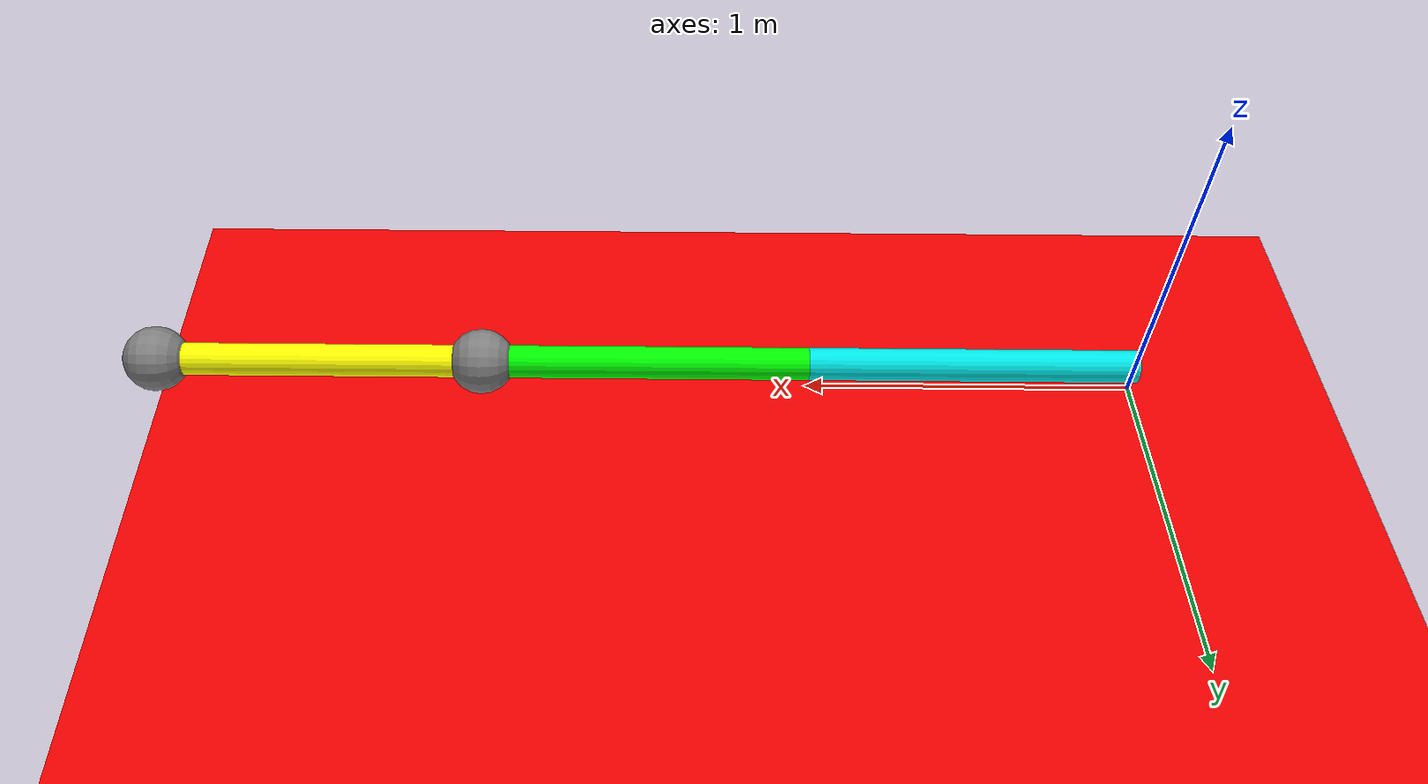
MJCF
<mujoco>
	<option gravity="0 0 0.0">
		<flag contact="enable" />
	</option>
	<worldbody>

        <light diffuse=".5 .5 .5" pos="0 0 10" dir="0 0 -1"/>
		<geom type="plane" size="3 3 0.1" rgba=".9 0 0 1"/>
		<body pos="0.5 0 0.1" euler="0 90 0">
			<joint name ="joint0" type="hinge" axis="-1 0 0" pos="0 0 -0.5"/>
			<geom type="cylinder" size="0.05 0.5" rgba="0 .9 0.9 1"/>
			<body pos="0 0 1" euler="0 0 0">
				<joint name ="joint1" type="hinge" axis="-1 0 0" pos="0 0 -0.5"/>
				<geom type="cylinder" size="0.05 0.5" rgba="0 1 0 1"/>
				<site name="tip0" size="0.1" pos="0 0 0.5"/>
				<body pos="0 0 1" euler="0 0 0">
					<joint name ="joint2" type="hinge" axis="-1 0 0" pos="0 0 -0.5"/>
					<geom type="cylinder" size="0.05 0.5" rgba="1 1 0 1"/>
					<site name="tip1" size="0.1" pos="0 0 0.5"/>
				</body>
			</body>
		</body>

	</worldbody>

	<sensor>
		<framepos objtype="site" objname="tip0"/>
		<framepos objtype="site" objname="tip1"/>
	</sensor>

	<actuator>
		<motor name="torq_servo0" joint="joint0" />
		<motor name="torq_servo1" joint="joint1" />
		<motor name="torq_servo2" joint="joint2" />
	</actuator>

	<keyframe>
    	<key name="homepos" qpos="0 0 0" />
	</keyframe>

</mujoco>
